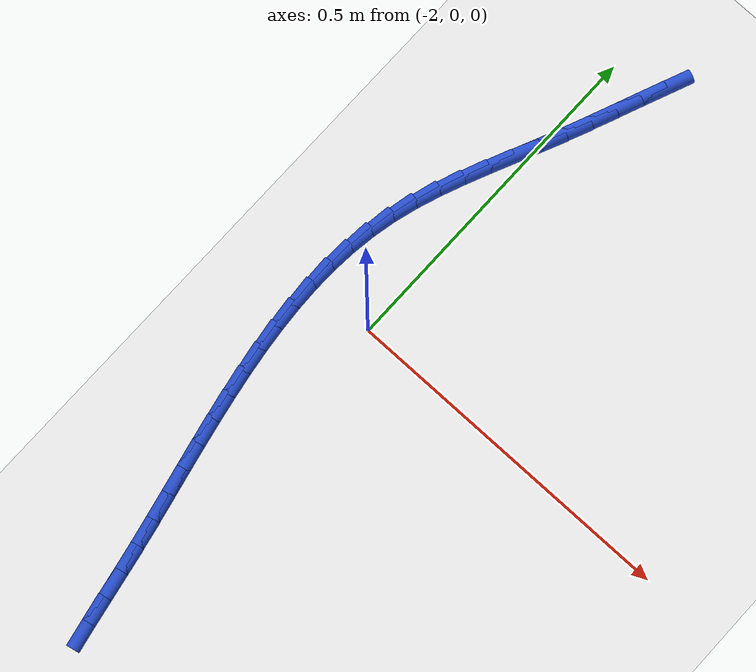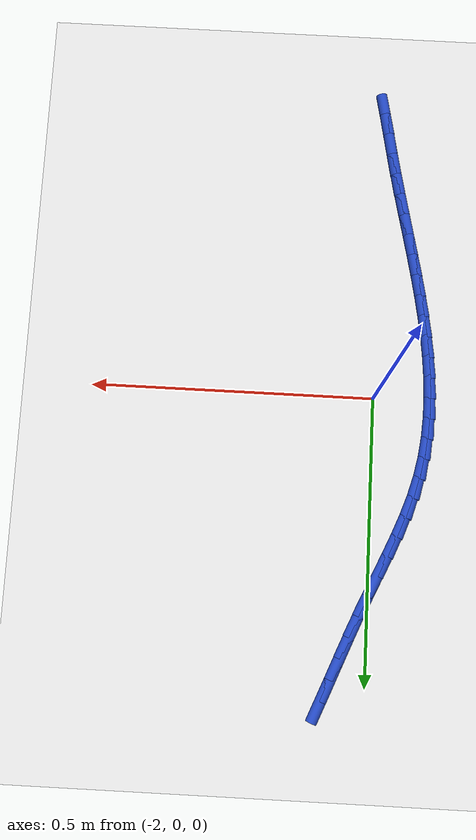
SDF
<sdf version="1.6">
 <world name="default">
  <model name="ground_plane">
   <static>1</static>
   <link name="link">
    <collision name="collision">
     <geometry><plane><normal>0 0 1</normal><size>100 100</size></plane></geometry>
     <surface><friction><ode><mu>100</mu><mu2>50</mu2></ode></friction></surface>
    </collision>
    <visual name="visual">
     <cast_shadows>0</cast_shadows>
     <geometry><plane><normal>0 0 1</normal><size>100 100</size></plane></geometry>
     <material>
      <script><uri>file://media/materials/scripts/gazebo.material</uri><name>Gazebo/WhiteGlow</name></script>
     </material>
    </visual>
   </link>
  </model>
  <model name="line">
   <link name="link_73">
    <pose>-1.92663302575394 0.5210640675405415 0.01 0 1.57 1.1798471913529858</pose>
    <collision name="collision">
     <geometry><cylinder><radius>0.01</radius><length>0.08</length></cylinder></geometry>
    </collision>
    <visual name="visual">
     <material>
      <script><name>Gazebo/Blue</name><uri>file://media/materials/scripts/gazebo.material</uri></script>
     </material>
     <geometry><cylinder><radius>0.01</radius><length>0.08</length></cylinder></geometry>
    </visual>
   </link>
   <link name="link_74">
    <pose>-1.9411916713508999 0.48574168283248836 0.01 0 1.57 1.1844997572481204</pose>
    <collision name="collision">
     <geometry><cylinder><radius>0.01</radius><length>0.08</length></cylinder></geometry>
    </collision>
    <visual name="visual">
     <material>
      <script><name>Gazebo/Blue</name><uri>file://media/materials/scripts/gazebo.material</uri></script>
     </material>
     <geometry><cylinder><radius>0.01</radius><length>0.08</length></cylinder></geometry>
    </visual>
   </link>
   <link name="link_75">
    <pose>-1.9556326037698326 0.45023692272433874 0.01 0 1.57 1.1826001019259422</pose>
    <collision name="collision">
     <geometry><cylinder><radius>0.01</radius><length>0.08</length></cylinder></geometry>
    </collision>
    <visual name="visual">
     <material>
      <script><name>Gazebo/Blue</name><uri>file://media/materials/scripts/gazebo.material</uri></script>
     </material>
     <geometry><cylinder><radius>0.01</radius><length>0.08</length></cylinder></geometry>
    </visual>
   </link>
   <link name="link_76">
    <pose>-1.9701643501984212 0.4147024558401879 0.01 0 1.57 1.1741708307575474</pose>
    <collision name="collision">
     <geometry><cylinder><radius>0.01</radius><length>0.08</length></cylinder></geometry>
    </collision>
    <visual name="visual">
     <material>
      <script><name>Gazebo/Blue</name><uri>file://media/materials/scripts/gazebo.material</uri></script>
     </material>
     <geometry><cylinder><radius>0.01</radius><length>0.08</length></cylinder></geometry>
    </visual>
   </link>
   <link name="link_77">
    <pose>-1.984995437824353 0.37929095080413194 0.01 0 1.57 1.1593084396382058</pose>
    <collision name="collision">
     <geometry><cylinder><radius>0.01</radius><length>0.08</length></cylinder></geometry>
    </collision>
    <visual name="visual">
     <material>
      <script><name>Gazebo/Blue</name><uri>file://media/materials/scripts/gazebo.material</uri></script>
     </material>
     <geometry><cylinder><radius>0.01</radius><length>0.08</length></cylinder></geometry>
    </visual>
   </link>
   <link name="link_78">
    <pose>-2.0003295340367666 0.34415334694937677 0.01 0 1.57 1.1456545798271427</pose>
    <collision name="collision">
     <geometry><cylinder><radius>0.01</radius><length>0.08</length></cylinder></geometry>
    </collision>
    <visual name="visual">
     <material>
      <script><name>Gazebo/Blue</name><uri>file://media/materials/scripts/gazebo.material</uri></script>
     </material>
     <geometry><cylinder><radius>0.01</radius><length>0.08</length></cylinder></geometry>
    </visual>
   </link>
   <link name="link_79">
    <pose>-2.016090890198023 0.3093411573499017 0.01 0 1.57 1.1450006950329576</pose>
    <collision name="collision">
     <geometry><cylinder><radius>0.01</radius><length>0.08</length></cylinder></geometry>
    </collision>
    <visual name="visual">
     <material>
      <script><name>Gazebo/Blue</name><uri>file://media/materials/scripts/gazebo.material</uri></script>
     </material>
     <geometry><cylinder><radius>0.01</radius><length>0.08</length></cylinder></geometry>
    </visual>
   </link>
   <link name="link_80">
    <pose>-2.0317775203473625 0.2747542245292578 0.01 0 1.57 1.1585951568784718</pose>
    <collision name="collision">
     <geometry><cylinder><radius>0.01</radius><length>0.08</length></cylinder></geometry>
    </collision>
    <visual name="visual">
     <material>
      <script><name>Gazebo/Blue</name><uri>file://media/materials/scripts/gazebo.material</uri></script>
     </material>
     <geometry><cylinder><radius>0.01</radius><length>0.08</length></cylinder></geometry>
    </visual>
   </link>
   <link name="link_81">
    <pose>-2.0468515628850925 0.2402796251699766 0.01 0 1.57 1.1869557409004703</pose>
    <collision name="collision">
     <geometry><cylinder><radius>0.01</radius><length>0.08</length></cylinder></geometry>
    </collision>
    <visual name="visual">
     <material>
      <script><name>Gazebo/Blue</name><uri>file://media/materials/scripts/gazebo.material</uri></script>
     </material>
     <geometry><cylinder><radius>0.01</radius><length>0.08</length></cylinder></geometry>
    </visual>
   </link>
   <link name="link_82">
    <pose>-2.0607751562115215 0.2058044359545887 0.01 0 1.57 1.230796765758897</pose>
    <collision name="collision">
     <geometry><cylinder><radius>0.01</radius><length>0.08</length></cylinder></geometry>
    </collision>
    <visual name="visual">
     <material>
      <script><name>Gazebo/Blue</name><uri>file://media/materials/scripts/gazebo.material</uri></script>
     </material>
     <geometry><cylinder><radius>0.01</radius><length>0.08</length></cylinder></geometry>
    </visual>
   </link>
   <link name="link_83">
    <pose>-2.0730104387269557 0.17121573356562453 0.01 0 1.57 1.2908461554128507</pose>
    <collision name="collision">
     <geometry><cylinder><radius>0.01</radius><length>0.08</length></cylinder></geometry>
    </collision>
    <visual name="visual">
     <material>
      <script><name>Gazebo/Blue</name><uri>file://media/materials/scripts/gazebo.material</uri></script>
     </material>
     <geometry><cylinder><radius>0.01</radius><length>0.08</length></cylinder></geometry>
    </visual>
   </link>
   <link name="link_84">
    <pose>-2.083019792975648 0.13640063408996614 0.01 0 1.57 1.362573348284718</pose>
    <collision name="collision">
     <geometry><cylinder><radius>0.01</radius><length>0.08</length></cylinder></geometry>
    </collision>
    <visual name="visual">
     <material>
      <script><name>Gazebo/Blue</name><uri>file://media/materials/scripts/gazebo.material</uri></script>
     </material>
     <geometry><cylinder><radius>0.01</radius><length>0.08</length></cylinder></geometry>
    </visual>
   </link>
   <link name="link_85">
    <pose>-2.0904414050471316 0.10127462795943397 0.01 0 1.57 1.431831067976719</pose>
    <collision name="collision">
     <geometry><cylinder><radius>0.01</radius><length>0.08</length></cylinder></geometry>
    </collision>
    <visual name="visual">
     <material>
      <script><name>Gazebo/Blue</name><uri>file://media/materials/scripts/gazebo.material</uri></script>
     </material>
     <geometry><cylinder><radius>0.01</radius><length>0.08</length></cylinder></geometry>
    </visual>
   </link>
   <link name="link_86">
    <pose>-2.0953987169715877 0.06583152495613336 0.01 0 1.57 1.4954360025242495</pose>
    <collision name="collision">
     <geometry><cylinder><radius>0.01</radius><length>0.08</length></cylinder></geometry>
    </collision>
    <visual name="visual">
     <material>
      <script><name>Gazebo/Blue</name><uri>file://media/materials/scripts/gazebo.material</uri></script>
     </material>
     <geometry><cylinder><radius>0.01</radius><length>0.08</length></cylinder></geometry>
    </visual>
   </link>
   <link name="link_87">
    <pose>-2.098098186201555 0.030078533387354972 0.01 0 1.57 1.5528237257164188</pose>
    <collision name="collision">
     <geometry><cylinder><radius>0.01</radius><length>0.08</length></cylinder></geometry>
    </collision>
    <visual name="visual">
     <material>
      <script><name>Gazebo/Blue</name><uri>file://media/materials/scripts/gazebo.material</uri></script>
     </material>
     <geometry><cylinder><radius>0.01</radius><length>0.08</length></cylinder></geometry>
    </visual>
   </link>
   <link name="link_88">
    <pose>-2.0987462701895714 -0.005977138439610551 0.01 0 1.57 -1.537883700420675</pose>
    <collision name="collision">
     <geometry><cylinder><radius>0.01</radius><length>0.08</length></cylinder></geometry>
    </collision>
    <visual name="visual">
     <material>
      <script><name>Gazebo/Blue</name><uri>file://media/materials/scripts/gazebo.material</uri></script>
     </material>
     <geometry><cylinder><radius>0.01</radius><length>0.08</length></cylinder></geometry>
    </visual>
   </link>
   <link name="link_89">
    <pose>-2.0975494263881744 -0.04232828221747141 0.01 0 1.57 -1.4935659622784996</pose>
    <collision name="collision">
     <geometry><cylinder><radius>0.01</radius><length>0.08</length></cylinder></geometry>
    </collision>
    <visual name="visual">
     <material>
      <script><name>Gazebo/Blue</name><uri>file://media/materials/scripts/gazebo.material</uri></script>
     </material>
     <geometry><cylinder><radius>0.01</radius><length>0.08</length></cylinder></geometry>
    </visual>
   </link>
   <link name="link_90">
    <pose>-2.0947141122499047 -0.07896768963893701 0.01 0 1.57 -1.4557253061426636</pose>
    <collision name="collision">
     <geometry><cylinder><radius>0.01</radius><length>0.08</length></cylinder></geometry>
    </collision>
    <visual name="visual">
     <material>
      <script><name>Gazebo/Blue</name><uri>file://media/materials/scripts/gazebo.material</uri></script>
     </material>
     <geometry><cylinder><radius>0.01</radius><length>0.08</length></cylinder></geometry>
    </visual>
   </link>
   <link name="link_91">
    <pose>-2.0904467852272997 -0.11588815239671629 0.01 0 1.57 -1.4241753916564148</pose>
    <collision name="collision">
     <geometry><cylinder><radius>0.01</radius><length>0.08</length></cylinder></geometry>
    </collision>
    <visual name="visual">
     <material>
      <script><name>Gazebo/Blue</name><uri>file://media/materials/scripts/gazebo.material</uri></script>
     </material>
     <geometry><cylinder><radius>0.01</radius><length>0.08</length></cylinder></geometry>
    </visual>
   </link>
   <link name="link_92">
    <pose>-2.084953902772896 -0.15308246218351898 0.01 0 1.57 -1.3986823940158792</pose>
    <collision name="collision">
     <geometry><cylinder><radius>0.01</radius><length>0.08</length></cylinder></geometry>
    </collision>
    <visual name="visual">
     <material>
      <script><name>Gazebo/Blue</name><uri>file://media/materials/scripts/gazebo.material</uri></script>
     </material>
     <geometry><cylinder><radius>0.01</radius><length>0.08</length></cylinder></geometry>
    </visual>
   </link>
   <link name="link_93">
    <pose>-2.0784419223392354 -0.19054341069205255 0.01 0 1.57 -1.3790011454649973</pose>
    <collision name="collision">
     <geometry><cylinder><radius>0.01</radius><length>0.08</length></cylinder></geometry>
    </collision>
    <visual name="visual">
     <material>
      <script><name>Gazebo/Blue</name><uri>file://media/materials/scripts/gazebo.material</uri></script>
     </material>
     <geometry><cylinder><radius>0.01</radius><length>0.08</length></cylinder></geometry>
    </visual>
   </link>
   <link name="link_94">
    <pose>-2.0711173013788544 -0.22826378961502677 0.01 0 1.57 -1.3649001033048285</pose>
    <collision name="collision">
     <geometry><cylinder><radius>0.01</radius><length>0.08</length></cylinder></geometry>
    </collision>
    <visual name="visual">
     <material>
      <script><name>Gazebo/Blue</name><uri>file://media/materials/scripts/gazebo.material</uri></script>
     </material>
     <geometry><cylinder><radius>0.01</radius><length>0.08</length></cylinder></geometry>
    </visual>
   </link>
   <link name="link_95">
    <pose>-2.0631864973442915 -0.26623639064515053 0.01 0 1.57 -1.3561772295671346</pose>
    <collision name="collision">
     <geometry><cylinder><radius>0.01</radius><length>0.08</length></cylinder></geometry>
    </collision>
    <visual name="visual">
     <material>
      <script><name>Gazebo/Blue</name><uri>file://media/materials/scripts/gazebo.material</uri></script>
     </material>
     <geometry><cylinder><radius>0.01</radius><length>0.08</length></cylinder></geometry>
    </visual>
   </link>
   <link name="link_96">
    <pose>-2.054855967688085 -0.3044540054751329 0.01 0 1.57 -1.3526689261756903</pose>
    <collision name="collision">
     <geometry><cylinder><radius>0.01</radius><length>0.08</length></cylinder></geometry>
    </collision>
    <visual name="visual">
     <material>
      <script><name>Gazebo/Blue</name><uri>file://media/materials/scripts/gazebo.material</uri></script>
     </material>
     <geometry><cylinder><radius>0.01</radius><length>0.08</length></cylinder></geometry>
    </visual>
   </link>
   <link name="link_97">
    <pose>-2.0463321698627746 -0.34290942579768285 0.01 0 1.57 -1.3542537960461738</pose>
    <collision name="collision">
     <geometry><cylinder><radius>0.01</radius><length>0.08</length></cylinder></geometry>
    </collision>
    <visual name="visual">
     <material>
      <script><name>Gazebo/Blue</name><uri>file://media/materials/scripts/gazebo.material</uri></script>
     </material>
     <geometry><cylinder><radius>0.01</radius><length>0.08</length></cylinder></geometry>
    </visual>
   </link>
   <link name="link_98">
    <pose>-2.037821561320898 -0.38159544330551004 0.01 0 1.57 -1.3608524815070073</pose>
    <collision name="collision">
     <geometry><cylinder><radius>0.01</radius><length>0.08</length></cylinder></geometry>
    </collision>
    <visual name="visual">
     <material>
      <script><name>Gazebo/Blue</name><uri>file://media/materials/scripts/gazebo.material</uri></script>
     </material>
     <geometry><cylinder><radius>0.01</radius><length>0.08</length></cylinder></geometry>
    </visual>
   </link>
   <link name="link_99">
    <pose>-2.0295305995149935 -0.42050484969132196 0.01 0 1.57 -1.372188294096108</pose>
    <collision name="collision">
     <geometry><cylinder><radius>0.01</radius><length>0.08</length></cylinder></geometry>
    </collision>
    <visual name="visual">
     <material>
      <script><name>Gazebo/Blue</name><uri>file://media/materials/scripts/gazebo.material</uri></script>
     </material>
     <geometry><cylinder><radius>0.01</radius><length>0.08</length></cylinder></geometry>
    </visual>
   </link>
   <link name="link_100">
    <pose>-2.021656970312106 -0.45962628065893796 0.01 0 1.57 -1.3814006349998413</pose>
    <collision name="collision">
     <geometry><cylinder><radius>0.01</radius><length>0.08</length></cylinder></geometry>
    </collision>
    <visual name="visual">
     <material>
      <script><name>Gazebo/Blue</name><uri>file://media/materials/scripts/gazebo.material</uri></script>
     </material>
     <geometry><cylinder><radius>0.01</radius><length>0.08</length></cylinder></geometry>
    </visual>
   </link>
   <link name="link_101">
    <pose>-2.014142435042089 -0.49882711452556555 0.01 0 1.57 -1.3807596825490325</pose>
    <collision name="collision">
     <geometry><cylinder><radius>0.01</radius><length>0.08</length></cylinder></geometry>
    </collision>
    <visual name="visual">
     <material>
      <script><name>Gazebo/Blue</name><uri>file://media/materials/scripts/gazebo.material</uri></script>
     </material>
     <geometry><cylinder><radius>0.01</radius><length>0.08</length></cylinder></geometry>
    </visual>
   </link>
   <link name="link_102">
    <pose>-2.006638534948726 -0.5378372229450614 0.01 0 1.57 -1.3696857613355655</pose>
    <collision name="collision">
     <geometry><cylinder><radius>0.01</radius><length>0.08</length></cylinder></geometry>
    </collision>
    <visual name="visual">
     <material>
      <script><name>Gazebo/Blue</name><uri>file://media/materials/scripts/gazebo.material</uri></script>
     </material>
     <geometry><cylinder><radius>0.01</radius><length>0.08</length></cylinder></geometry>
    </visual>
   </link>
  </model>
 </world>
</sdf>
